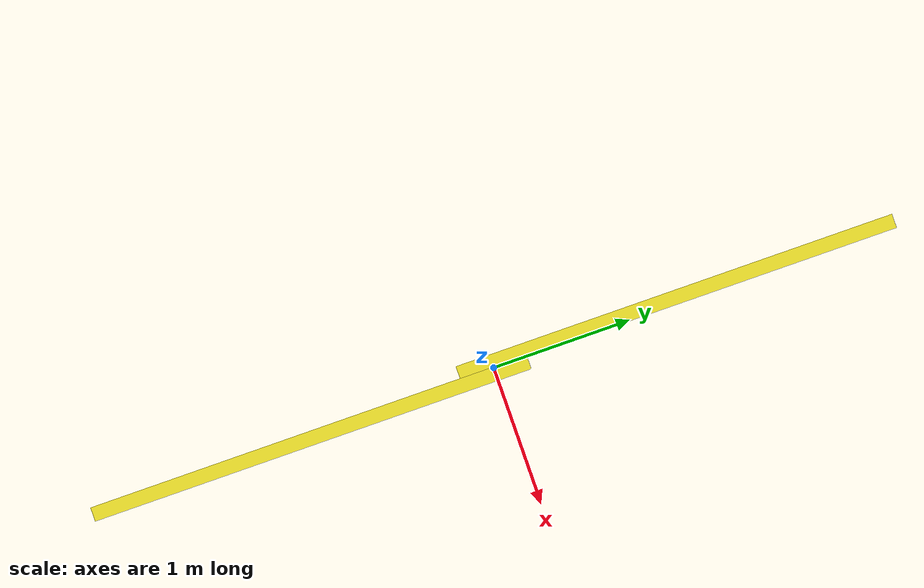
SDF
<?xml version='1.0'?>
<sdf version='1.7'>
  <model name='World_edit'>
    <model name='yellow line'>
      <static>1</static>
      <link name='link_ground'>
        <collision name='collision'>
          <geometry>
            <plane>
              <normal>0 0 1</normal>
              <size>0.1 3.2</size>
            </plane>
          </geometry>
          <surface>
            <friction>
              <ode>
                <mu>100</mu>
                <mu2>50</mu2>
              </ode>
            </friction>
          </surface>
        </collision>
        <visual name='visual_ground'>
          <cast_shadows>0</cast_shadows>
          <geometry>
            <plane>
              <normal>0 0 1</normal>
              <size>0.1 3.2</size>
            </plane>
          </geometry>
          <material>
            <script>
              <uri>file://media/materials/scripts/gazebo.material</uri>
              <name>Gazebo/Yellow</name>
            </script>
          </material>
        </visual>
      </link>
      <pose>0.044017 -1.35572 0 0 -0 0</pose>
    </model>
    <model name='yellow line_0'>
      <static>1</static>
      <link name='link_ground'>
        <collision name='collision'>
          <geometry>
            <plane>
              <normal>0 0 1</normal>
              <size>0.1 3.2</size>
            </plane>
          </geometry>
          <surface>
            <friction>
              <ode>
                <mu>100</mu>
                <mu2>50</mu2>
              </ode>
            </friction>
          </surface>
        </collision>
        <visual name='visual_ground'>
          <cast_shadows>0</cast_shadows>
          <geometry>
            <plane>
              <normal>0 0 1</normal>
              <size>0.1 3.2</size>
            </plane>
          </geometry>
          <material>
            <script>
              <uri>file://media/materials/scripts/gazebo.material</uri>
              <name>Gazebo/Yellow</name>
            </script>
          </material>
        </visual>
      </link>
      <pose>-0.044014 1.35572 0 0 -0 0</pose>
    </model>
    <static>0</static>
    <allow_auto_disable>1</allow_auto_disable>
  </model>
</sdf>
